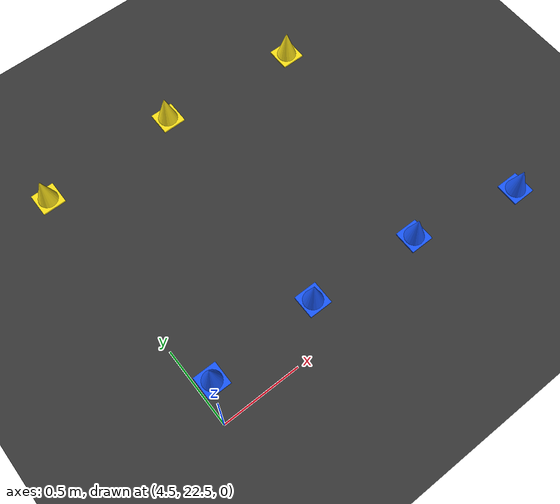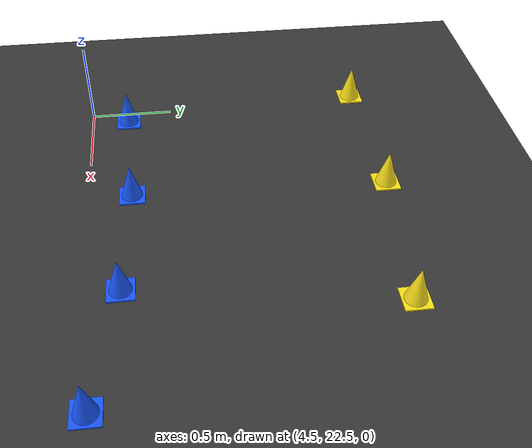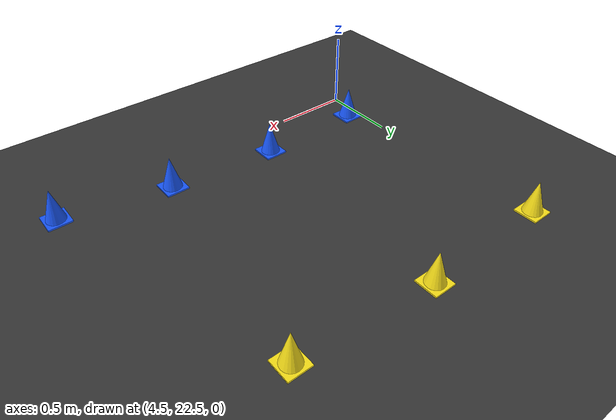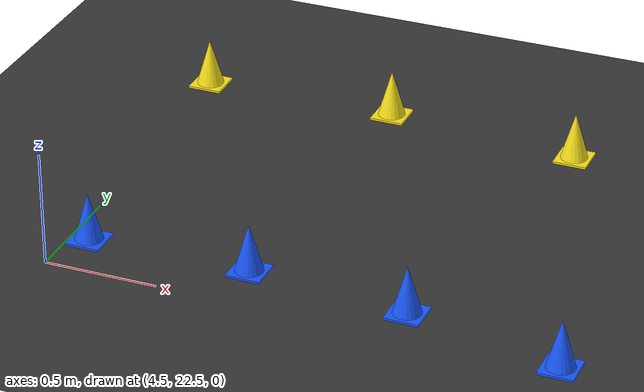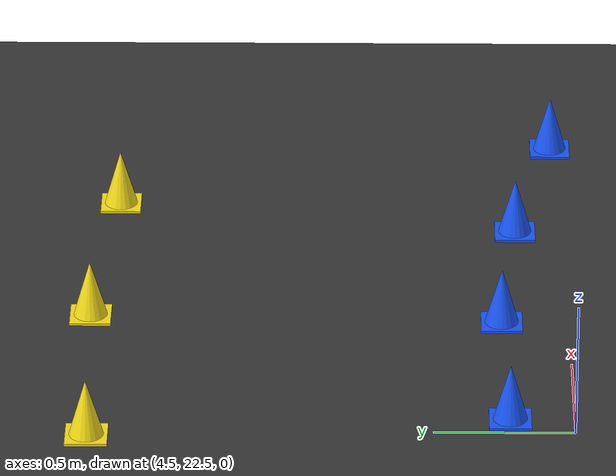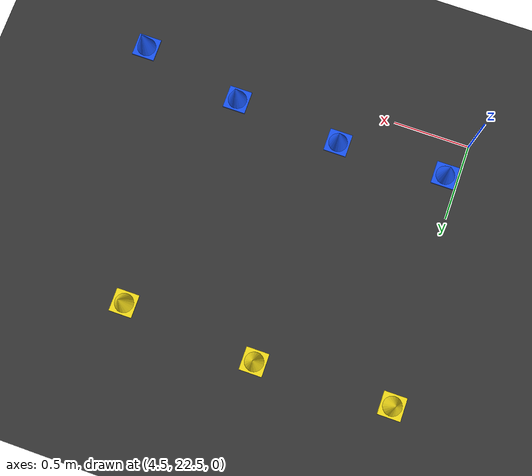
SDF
<sdf version="1.8">
 <world name="track_with_cones">
  <model name="ground_plane">
   <static>true</static>
   <link name="link">
    <collision name="collision">
     <geometry><plane><normal>0 0 1</normal><size>100 100</size></plane></geometry>
     <surface><friction><ode><mu>100</mu><mu2>100</mu2></ode></friction></surface>
    </collision>
    <visual name="visual">
     <geometry><plane><normal>0 0 1</normal><size>100 100</size></plane></geometry>
     <material>
      <ambient>0.22 0.22 0.22 1</ambient>
      <diffuse>0.22 0.22 0.22 1</diffuse>
      <specular>0.05 0.05 0.05 1</specular>
     </material>
    </visual>
   </link>
  </model>
  <model name="cone_blue_54">
   <static>true</static>
   <pose>6.7123 22.5419 0.11 0 0 0</pose>
   <link name="link">
    <visual name="base_visual">
     <pose>0 0 -0.105 0 0 0</pose>
     <geometry><box><size>0.15 0.15 0.01</size></box></geometry>
     <material>
      <ambient>0.05 0.25 0.95 1.0</ambient>
      <diffuse>0.10 0.35 1.00 1.0</diffuse>
      <specular>0.2 0.2 0.2 1.0</specular>
     </material>
    </visual>
    <visual name="cone_visual">
     <geometry><cone><radius>0.065</radius><length>0.22</length></cone></geometry>
     <material>
      <ambient>0.05 0.25 0.95 1.0</ambient>
      <diffuse>0.10 0.35 1.00 1.0</diffuse>
      <specular>0.2 0.2 0.2 1.0</specular>
     </material>
    </visual>
    <collision name="collision">
     <geometry><cylinder><radius>0.065</radius><length>0.22</length></cylinder></geometry>
    </collision>
   </link>
  </model>
  <model name="cone_blue_55">
   <static>true</static>
   <pose>6.0220 22.6876 0.11 0 0 0</pose>
   <link name="link">
    <visual name="base_visual">
     <pose>0 0 -0.105 0 0 0</pose>
     <geometry><box><size>0.15 0.15 0.01</size></box></geometry>
     <material>
      <ambient>0.05 0.25 0.95 1.0</ambient>
      <diffuse>0.10 0.35 1.00 1.0</diffuse>
      <specular>0.2 0.2 0.2 1.0</specular>
     </material>
    </visual>
    <visual name="cone_visual">
     <geometry><cone><radius>0.065</radius><length>0.22</length></cone></geometry>
     <material>
      <ambient>0.05 0.25 0.95 1.0</ambient>
      <diffuse>0.10 0.35 1.00 1.0</diffuse>
      <specular>0.2 0.2 0.2 1.0</specular>
     </material>
    </visual>
    <collision name="collision">
     <geometry><cylinder><radius>0.065</radius><length>0.22</length></cylinder></geometry>
    </collision>
   </link>
  </model>
  <model name="cone_yellow_55">
   <static>true</static>
   <pose>6.2416 24.1714 0.11 0 0 0</pose>
   <link name="link">
    <visual name="base_visual">
     <pose>0 0 -0.105 0 0 0</pose>
     <geometry><box><size>0.15 0.15 0.01</size></box></geometry>
     <material>
      <ambient>0.95 0.85 0.05 1.0</ambient>
      <diffuse>1.00 0.90 0.10 1.0</diffuse>
      <specular>0.2 0.2 0.2 1.0</specular>
     </material>
    </visual>
    <visual name="cone_visual">
     <geometry><cone><radius>0.065</radius><length>0.22</length></cone></geometry>
     <material>
      <ambient>0.95 0.85 0.05 1.0</ambient>
      <diffuse>1.00 0.90 0.10 1.0</diffuse>
      <specular>0.2 0.2 0.2 1.0</specular>
     </material>
    </visual>
    <collision name="collision">
     <geometry><cylinder><radius>0.065</radius><length>0.22</length></cylinder></geometry>
    </collision>
   </link>
  </model>
  <model name="cone_blue_56">
   <static>true</static>
   <pose>5.3078 22.7484 0.11 0 0 0</pose>
   <link name="link">
    <visual name="base_visual">
     <pose>0 0 -0.105 0 0 0</pose>
     <geometry><box><size>0.15 0.15 0.01</size></box></geometry>
     <material>
      <ambient>0.05 0.25 0.95 1.0</ambient>
      <diffuse>0.10 0.35 1.00 1.0</diffuse>
      <specular>0.2 0.2 0.2 1.0</specular>
     </material>
    </visual>
    <visual name="cone_visual">
     <geometry><cone><radius>0.065</radius><length>0.22</length></cone></geometry>
     <material>
      <ambient>0.05 0.25 0.95 1.0</ambient>
      <diffuse>0.10 0.35 1.00 1.0</diffuse>
      <specular>0.2 0.2 0.2 1.0</specular>
     </material>
    </visual>
    <collision name="collision">
     <geometry><cylinder><radius>0.065</radius><length>0.22</length></cylinder></geometry>
    </collision>
   </link>
  </model>
  <model name="cone_yellow_56">
   <static>true</static>
   <pose>5.3518 24.2478 0.11 0 0 0</pose>
   <link name="link">
    <visual name="base_visual">
     <pose>0 0 -0.105 0 0 0</pose>
     <geometry><box><size>0.15 0.15 0.01</size></box></geometry>
     <material>
      <ambient>0.95 0.85 0.05 1.0</ambient>
      <diffuse>1.00 0.90 0.10 1.0</diffuse>
      <specular>0.2 0.2 0.2 1.0</specular>
     </material>
    </visual>
    <visual name="cone_visual">
     <geometry><cone><radius>0.065</radius><length>0.22</length></cone></geometry>
     <material>
      <ambient>0.95 0.85 0.05 1.0</ambient>
      <diffuse>1.00 0.90 0.10 1.0</diffuse>
      <specular>0.2 0.2 0.2 1.0</specular>
     </material>
    </visual>
    <collision name="collision">
     <geometry><cylinder><radius>0.065</radius><length>0.22</length></cylinder></geometry>
    </collision>
   </link>
  </model>
  <model name="cone_blue_57">
   <static>true</static>
   <pose>4.5872 22.7293 0.11 0 0 0</pose>
   <link name="link">
    <visual name="base_visual">
     <pose>0 0 -0.105 0 0 0</pose>
     <geometry><box><size>0.15 0.15 0.01</size></box></geometry>
     <material>
      <ambient>0.05 0.25 0.95 1.0</ambient>
      <diffuse>0.10 0.35 1.00 1.0</diffuse>
      <specular>0.2 0.2 0.2 1.0</specular>
     </material>
    </visual>
    <visual name="cone_visual">
     <geometry><cone><radius>0.065</radius><length>0.22</length></cone></geometry>
     <material>
      <ambient>0.05 0.25 0.95 1.0</ambient>
      <diffuse>0.10 0.35 1.00 1.0</diffuse>
      <specular>0.2 0.2 0.2 1.0</specular>
     </material>
    </visual>
    <collision name="collision">
     <geometry><cylinder><radius>0.065</radius><length>0.22</length></cylinder></geometry>
    </collision>
   </link>
  </model>
  <model name="cone_yellow_57">
   <static>true</static>
   <pose>4.4631 24.2241 0.11 0 0 0</pose>
   <link name="link">
    <visual name="base_visual">
     <pose>0 0 -0.105 0 0 0</pose>
     <geometry><box><size>0.15 0.15 0.01</size></box></geometry>
     <material>
      <ambient>0.95 0.85 0.05 1.0</ambient>
      <diffuse>1.00 0.90 0.10 1.0</diffuse>
      <specular>0.2 0.2 0.2 1.0</specular>
     </material>
    </visual>
    <visual name="cone_visual">
     <geometry><cone><radius>0.065</radius><length>0.22</length></cone></geometry>
     <material>
      <ambient>0.95 0.85 0.05 1.0</ambient>
      <diffuse>1.00 0.90 0.10 1.0</diffuse>
      <specular>0.2 0.2 0.2 1.0</specular>
     </material>
    </visual>
    <collision name="collision">
     <geometry><cylinder><radius>0.065</radius><length>0.22</length></cylinder></geometry>
    </collision>
   </link>
  </model>
 </world>
</sdf>
